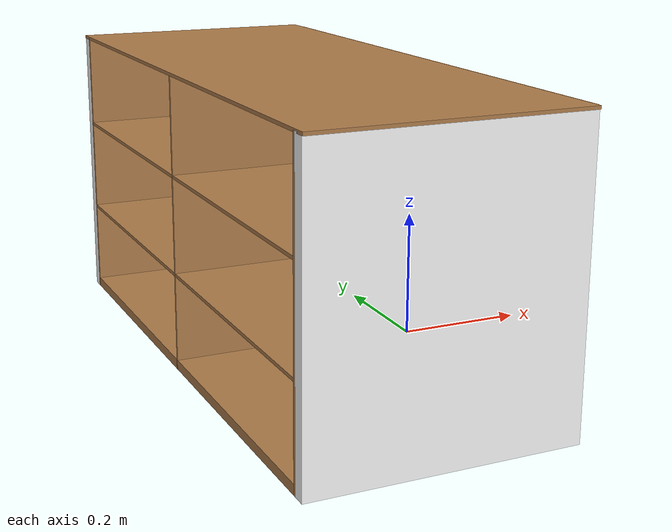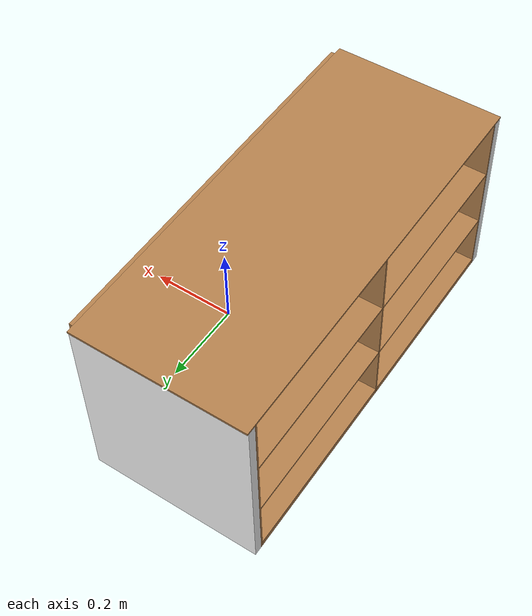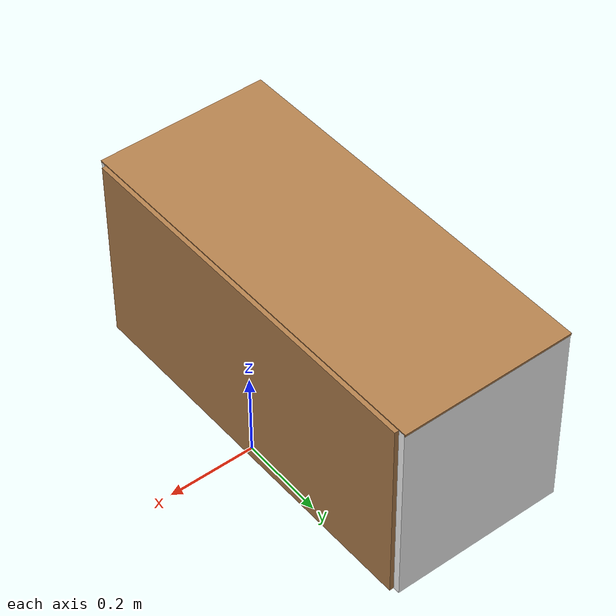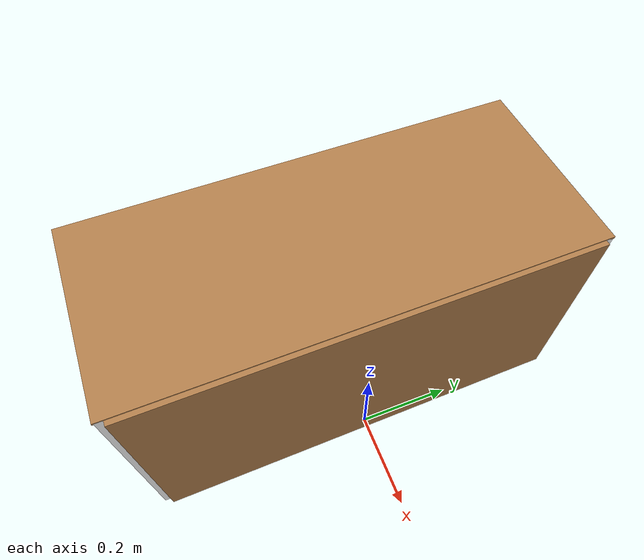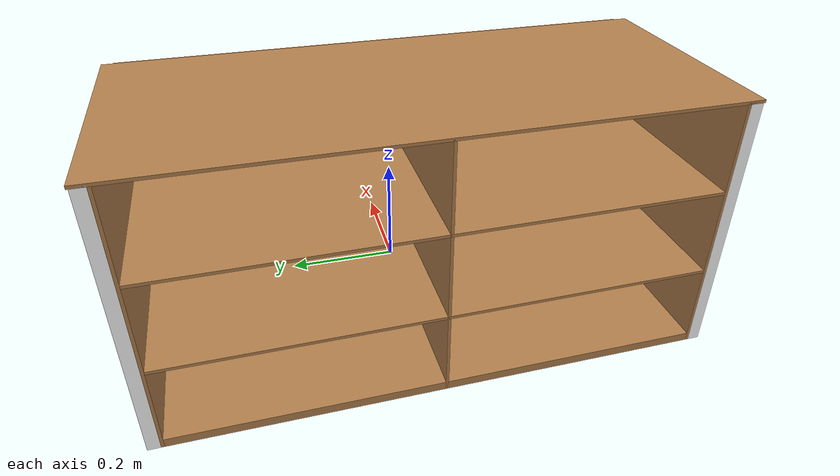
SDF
<?xml version='1.0'?>
<sdf version='1.6'>
  <model name='bookshelf_i_0'>
    <link name='link'>
      <pose frame=''>0 0 0 0 0 -1.56022</pose>
      <inertial>
        <mass>1</mass>
      </inertial>
      <self_collide>0</self_collide>
      <kinematic>0</kinematic>
      <visual name='right_side'>
        <pose frame=''>-0.455 -0.195 0.225 0 -0 0</pose>
        <geometry>
          <box>
            <size>0.02 0.4 0.45</size>
          </box>
        </geometry>
        <material>
          <script>
            <uri>model://bookshelf_i_0/materials11/scripts</uri>
            <uri>model://bookshelf_i_0/materials11/textures</uri>
            <name>BookShelf/11</name>
          </script>
          <shader type='pixel'/>
          <ambient>1 1 1 1</ambient>
          <diffuse>1 1 1 1</diffuse>
          <specular>0 0 0 1</specular>
          <emissive>0 0 0 1</emissive>
        </material>
        <transparency>0</transparency>
        <cast_shadows>1</cast_shadows>
      </visual>
      <visual name='left_side_inner'>
        <pose frame=''>0.4425 -0.195 0.225 0 -0 0</pose>
        <geometry>
          <box>
            <size>0.005 0.4 0.45</size>
          </box>
        </geometry>
        <material>
          <script>
            <uri>file://media/materials/scripts/gazebo.material</uri>
            <name>Gazebo/Wood</name>
          </script>
          <shader type='pixel'/>
          <ambient>1 1 1 1</ambient>
          <diffuse>1 1 1 1</diffuse>
          <specular>0.2 0.2 0.2 1</specular>
          <emissive>0 0 0 1</emissive>
        </material>
        <transparency>0</transparency>
        <cast_shadows>1</cast_shadows>
      </visual>
      <visual name='bottom'>
        <pose frame=''>0 -0.195 0.0075 0 -0 0</pose>
        <geometry>
          <box>
            <size>0.88 0.4 0.015</size>
          </box>
        </geometry>
        <material>
          <script>
            <uri>file://media/materials/scripts/gazebo.material</uri>
            <name>Gazebo/Wood</name>
          </script>
          <shader type='pixel'/>
          <ambient>1 1 1 1</ambient>
          <diffuse>1 1 1 1</diffuse>
          <specular>0.2 0.2 0.2 1</specular>
          <emissive>0 0 0 1</emissive>
        </material>
        <transparency>0</transparency>
        <cast_shadows>1</cast_shadows>
      </visual>
      <visual name='low_shelf'>
        <pose frame=''>0 -0.195 0.15 0 -0 0</pose>
        <geometry>
          <box>
            <size>0.88 0.4 0.005</size>
          </box>
        </geometry>
        <material>
          <script>
            <uri>file://media/materials/scripts/gazebo.material</uri>
            <name>Gazebo/Wood</name>
          </script>
          <shader type='pixel'/>
          <ambient>1 1 1 1</ambient>
          <diffuse>1 1 1 1</diffuse>
          <specular>0.2 0.2 0.2 1</specular>
          <emissive>0 0 0 1</emissive>
        </material>
        <transparency>0</transparency>
        <cast_shadows>1</cast_shadows>
      </visual>
      <visual name='back'>
        <pose frame=''>0 0.01 0.225 0 -0 0</pose>
        <geometry>
          <box>
            <size>0.9 0.01 0.45</size>
          </box>
        </geometry>
        <material>
          <script>
            <uri>file://media/materials/scripts/gazebo.material</uri>
            <name>Gazebo/Wood</name>
          </script>
          <shader type='pixel'/>
          <ambient>1 1 1 1</ambient>
          <diffuse>1 1 1 1</diffuse>
          <specular>0.2 0.2 0.2 1</specular>
          <emissive>0 0 0 1</emissive>
        </material>
        <transparency>0</transparency>
        <cast_shadows>1</cast_shadows>
      </visual>
      <visual name='top'>
        <pose frame=''>0 -0.195 0.45 0 -0 0</pose>
        <geometry>
          <box>
            <size>0.935 0.4 0.005</size>
          </box>
        </geometry>
        <material>
          <script>
            <uri>file://media/materials/scripts/gazebo.material</uri>
            <name>Gazebo/Wood</name>
          </script>
          <shader type='pixel'/>
          <ambient>1 1 1 1</ambient>
          <diffuse>1 1 1 1</diffuse>
          <specular>0.2 0.2 0.2 1</specular>
          <emissive>0 0 0 1</emissive>
        </material>
        <transparency>0</transparency>
        <cast_shadows>1</cast_shadows>
      </visual>
      <visual name='right_side_inner'>
        <pose frame=''>-0.4425 -0.195 0.225 0 -0 0</pose>
        <geometry>
          <box>
            <size>0.005 0.4 0.45</size>
          </box>
        </geometry>
        <material>
          <script>
            <uri>file://media/materials/scripts/gazebo.material</uri>
            <name>Gazebo/Wood</name>
          </script>
          <shader type='pixel'/>
          <ambient>1 1 1 1</ambient>
          <diffuse>1 1 1 1</diffuse>
          <specular>0.2 0.2 0.2 1</specular>
          <emissive>0 0 0 1</emissive>
        </material>
        <transparency>0</transparency>
        <cast_shadows>1</cast_shadows>
      </visual>
      <visual name='high_shelf'>
        <pose frame=''>0 -0.195 0.3 0 -0 0</pose>
        <geometry>
          <box>
            <size>0.88 0.4 0.005</size>
          </box>
        </geometry>
        <material>
          <script>
            <uri>file://media/materials/scripts/gazebo.material</uri>
            <name>Gazebo/Wood</name>
          </script>
          <shader type='pixel'/>
          <ambient>1 1 1 1</ambient>
          <diffuse>1 1 1 1</diffuse>
          <specular>0.2 0.2 0.2 1</specular>
          <emissive>0 0 0 1</emissive>
        </material>
        <transparency>0</transparency>
        <cast_shadows>1</cast_shadows>
      </visual>
      <visual name='left_side'>
        <pose frame=''>0.455 -0.195 0.225 0 -0 0</pose>
        <geometry>
          <box>
            <size>0.02 0.4 0.45</size>
          </box>
        </geometry>
        <material>
          <script>
            <uri>model://bookshelf_i_0/materials11/scripts</uri>
            <uri>model://bookshelf_i_0/materials11/textures</uri>
            <name>BookShelf/11</name>
          </script>
          <shader type='pixel'/>
          <ambient>1 1 1 1</ambient>
          <diffuse>1 1 1 1</diffuse>
          <specular>0 0 0 1</specular>
          <emissive>0 0 0 1</emissive>
        </material>
        <transparency>0</transparency>
        <cast_shadows>1</cast_shadows>
      </visual>
      <visual name='right_side_center'>
        <pose frame=''>0 -0.195 0.225 0 -0 0</pose>
        <geometry>
          <box>
            <size>0.005 0.4 0.45</size>
          </box>
        </geometry>
        <material>
          <script>
            <uri>file://media/materials/scripts/gazebo.material</uri>
            <name>Gazebo/Wood</name>
          </script>
          <shader type='pixel'/>
          <ambient>1 1 1 1</ambient>
          <diffuse>1 1 1 1</diffuse>
          <specular>0.2 0.2 0.2 1</specular>
          <emissive>0 0 0 1</emissive>
        </material>
        <transparency>0</transparency>
        <cast_shadows>1</cast_shadows>
      </visual>
      <collision name='top'>
        <laser_retro>0</laser_retro>
        <max_contacts>10</max_contacts>
        <pose frame=''>0 -0.195 0.45 0 -0 0</pose>
        <geometry>
          <box>
            <size>0.935 0.4 0.005</size>
          </box>
        </geometry>
        <surface>
          <friction>
            <ode>
              <mu>1</mu>
              <mu2>1</mu2>
              <fdir1>0 0 0</fdir1>
              <slip1>0</slip1>
              <slip2>0</slip2>
            </ode>
            <torsional>
              <coefficient>1</coefficient>
              <patch_radius>0</patch_radius>
              <surface_radius>0</surface_radius>
              <use_patch_radius>1</use_patch_radius>
              <ode>
                <slip>0</slip>
              </ode>
            </torsional>
          </friction>
          <bounce>
            <restitution_coefficient>0</restitution_coefficient>
            <threshold>1e+06</threshold>
          </bounce>
          <contact>
            <collide_without_contact>0</collide_without_contact>
            <collide_without_contact_bitmask>1</collide_without_contact_bitmask>
            <collide_bitmask>1</collide_bitmask>
            <ode>
              <soft_cfm>0</soft_cfm>
              <soft_erp>0.2</soft_erp>
              <kp>1e+13</kp>
              <kd>1</kd>
              <max_vel>0.01</max_vel>
              <min_depth>0</min_depth>
            </ode>
            <bullet>
              <split_impulse>1</split_impulse>
              <split_impulse_penetration_threshold>-0.01</split_impulse_penetration_threshold>
              <soft_cfm>0</soft_cfm>
              <soft_erp>0.2</soft_erp>
              <kp>1e+13</kp>
              <kd>1</kd>
            </bullet>
          </contact>
        </surface>
      </collision>
      <collision name='right_side_center'>
        <laser_retro>0</laser_retro>
        <max_contacts>10</max_contacts>
        <pose frame=''>0 -0.195 0.225 0 -0 0</pose>
        <geometry>
          <box>
            <size>0.005 0.4 0.45</size>
          </box>
        </geometry>
        <surface>
          <friction>
            <ode>
              <mu>1</mu>
              <mu2>1</mu2>
              <fdir1>0 0 0</fdir1>
              <slip1>0</slip1>
              <slip2>0</slip2>
            </ode>
            <torsional>
              <coefficient>1</coefficient>
              <patch_radius>0</patch_radius>
              <surface_radius>0</surface_radius>
              <use_patch_radius>1</use_patch_radius>
              <ode>
                <slip>0</slip>
              </ode>
            </torsional>
          </friction>
          <bounce>
            <restitution_coefficient>0</restitution_coefficient>
            <threshold>1e+06</threshold>
          </bounce>
          <contact>
            <collide_without_contact>0</collide_without_contact>
            <collide_without_contact_bitmask>1</collide_without_contact_bitmask>
            <collide_bitmask>1</collide_bitmask>
            <ode>
              <soft_cfm>0</soft_cfm>
              <soft_erp>0.2</soft_erp>
              <kp>1e+13</kp>
              <kd>1</kd>
              <max_vel>0.01</max_vel>
              <min_depth>0</min_depth>
            </ode>
            <bullet>
              <split_impulse>1</split_impulse>
              <split_impulse_penetration_threshold>-0.01</split_impulse_penetration_threshold>
              <soft_cfm>0</soft_cfm>
              <soft_erp>0.2</soft_erp>
              <kp>1e+13</kp>
              <kd>1</kd>
            </bullet>
          </contact>
        </surface>
      </collision>
      <collision name='back'>
        <laser_retro>0</laser_retro>
        <max_contacts>10</max_contacts>
        <pose frame=''>0 0.01 0.225 0 -0 0</pose>
        <geometry>
          <box>
            <size>0.9 0.01 0.45</size>
          </box>
        </geometry>
        <surface>
          <friction>
            <ode>
              <mu>1</mu>
              <mu2>1</mu2>
              <fdir1>0 0 0</fdir1>
              <slip1>0</slip1>
              <slip2>0</slip2>
            </ode>
            <torsional>
              <coefficient>1</coefficient>
              <patch_radius>0</patch_radius>
              <surface_radius>0</surface_radius>
              <use_patch_radius>1</use_patch_radius>
              <ode>
                <slip>0</slip>
              </ode>
            </torsional>
          </friction>
          <bounce>
            <restitution_coefficient>0</restitution_coefficient>
            <threshold>1e+06</threshold>
          </bounce>
          <contact>
            <collide_without_contact>0</collide_without_contact>
            <collide_without_contact_bitmask>1</collide_without_contact_bitmask>
            <collide_bitmask>1</collide_bitmask>
            <ode>
              <soft_cfm>0</soft_cfm>
              <soft_erp>0.2</soft_erp>
              <kp>1e+13</kp>
              <kd>1</kd>
              <max_vel>0.01</max_vel>
              <min_depth>0</min_depth>
            </ode>
            <bullet>
              <split_impulse>1</split_impulse>
              <split_impulse_penetration_threshold>-0.01</split_impulse_penetration_threshold>
              <soft_cfm>0</soft_cfm>
              <soft_erp>0.2</soft_erp>
              <kp>1e+13</kp>
              <kd>1</kd>
            </bullet>
          </contact>
        </surface>
      </collision>
      <collision name='right_side_inner'>
        <laser_retro>0</laser_retro>
        <max_contacts>10</max_contacts>
        <pose frame=''>-0.4425 -0.195 0.225 0 -0 0</pose>
        <geometry>
          <box>
            <size>0.005 0.4 0.45</size>
          </box>
        </geometry>
        <surface>
          <friction>
            <ode>
              <mu>1</mu>
              <mu2>1</mu2>
              <fdir1>0 0 0</fdir1>
              <slip1>0</slip1>
              <slip2>0</slip2>
            </ode>
            <torsional>
              <coefficient>1</coefficient>
              <patch_radius>0</patch_radius>
              <surface_radius>0</surface_radius>
              <use_patch_radius>1</use_patch_radius>
              <ode>
                <slip>0</slip>
              </ode>
            </torsional>
          </friction>
          <bounce>
            <restitution_coefficient>0</restitution_coefficient>
            <threshold>1e+06</threshold>
          </bounce>
          <contact>
            <collide_without_contact>0</collide_without_contact>
            <collide_without_contact_bitmask>1</collide_without_contact_bitmask>
            <collide_bitmask>1</collide_bitmask>
            <ode>
              <soft_cfm>0</soft_cfm>
              <soft_erp>0.2</soft_erp>
              <kp>1e+13</kp>
              <kd>1</kd>
              <max_vel>0.01</max_vel>
              <min_depth>0</min_depth>
            </ode>
            <bullet>
              <split_impulse>1</split_impulse>
              <split_impulse_penetration_threshold>-0.01</split_impulse_penetration_threshold>
              <soft_cfm>0</soft_cfm>
              <soft_erp>0.2</soft_erp>
              <kp>1e+13</kp>
              <kd>1</kd>
            </bullet>
          </contact>
        </surface>
      </collision>
      <collision name='bottom'>
        <laser_retro>0</laser_retro>
        <max_contacts>10</max_contacts>
        <pose frame=''>0 -0.195 0.0075 0 -0 0</pose>
        <geometry>
          <box>
            <size>0.88 0.4 0.015</size>
          </box>
        </geometry>
        <surface>
          <friction>
            <ode>
              <mu>1</mu>
              <mu2>1</mu2>
              <fdir1>0 0 0</fdir1>
              <slip1>0</slip1>
              <slip2>0</slip2>
            </ode>
            <torsional>
              <coefficient>1</coefficient>
              <patch_radius>0</patch_radius>
              <surface_radius>0</surface_radius>
              <use_patch_radius>1</use_patch_radius>
              <ode>
                <slip>0</slip>
              </ode>
            </torsional>
          </friction>
          <bounce>
            <restitution_coefficient>0</restitution_coefficient>
            <threshold>1e+06</threshold>
          </bounce>
          <contact>
            <collide_without_contact>0</collide_without_contact>
            <collide_without_contact_bitmask>1</collide_without_contact_bitmask>
            <collide_bitmask>1</collide_bitmask>
            <ode>
              <soft_cfm>0</soft_cfm>
              <soft_erp>0.2</soft_erp>
              <kp>1e+13</kp>
              <kd>1</kd>
              <max_vel>0.01</max_vel>
              <min_depth>0</min_depth>
            </ode>
            <bullet>
              <split_impulse>1</split_impulse>
              <split_impulse_penetration_threshold>-0.01</split_impulse_penetration_threshold>
              <soft_cfm>0</soft_cfm>
              <soft_erp>0.2</soft_erp>
              <kp>1e+13</kp>
              <kd>1</kd>
            </bullet>
          </contact>
        </surface>
      </collision>
      <collision name='low_shelf'>
        <laser_retro>0</laser_retro>
        <max_contacts>10</max_contacts>
        <pose frame=''>0 -0.195 0.15 0 -0 0</pose>
        <geometry>
          <box>
            <size>0.88 0.4 0.005</size>
          </box>
        </geometry>
        <surface>
          <friction>
            <ode>
              <mu>1</mu>
              <mu2>1</mu2>
              <fdir1>0 0 0</fdir1>
              <slip1>0</slip1>
              <slip2>0</slip2>
            </ode>
            <torsional>
              <coefficient>1</coefficient>
              <patch_radius>0</patch_radius>
              <surface_radius>0</surface_radius>
              <use_patch_radius>1</use_patch_radius>
              <ode>
                <slip>0</slip>
              </ode>
            </torsional>
          </friction>
          <bounce>
            <restitution_coefficient>0</restitution_coefficient>
            <threshold>1e+06</threshold>
          </bounce>
          <contact>
            <collide_without_contact>0</collide_without_contact>
            <collide_without_contact_bitmask>1</collide_without_contact_bitmask>
            <collide_bitmask>1</collide_bitmask>
            <ode>
              <soft_cfm>0</soft_cfm>
              <soft_erp>0.2</soft_erp>
              <kp>1e+13</kp>
              <kd>1</kd>
              <max_vel>0.01</max_vel>
              <min_depth>0</min_depth>
            </ode>
            <bullet>
              <split_impulse>1</split_impulse>
              <split_impulse_penetration_threshold>-0.01</split_impulse_penetration_threshold>
              <soft_cfm>0</soft_cfm>
              <soft_erp>0.2</soft_erp>
              <kp>1e+13</kp>
              <kd>1</kd>
            </bullet>
          </contact>
        </surface>
      </collision>
      <collision name='high_shelf'>
        <laser_retro>0</laser_retro>
        <max_contacts>10</max_contacts>
        <pose frame=''>0 -0.195 0.3 0 -0 0</pose>
        <geometry>
          <box>
            <size>0.88 0.4 0.005</size>
          </box>
        </geometry>
        <surface>
          <friction>
            <ode>
              <mu>1</mu>
              <mu2>1</mu2>
              <fdir1>0 0 0</fdir1>
              <slip1>0</slip1>
              <slip2>0</slip2>
            </ode>
            <torsional>
              <coefficient>1</coefficient>
              <patch_radius>0</patch_radius>
              <surface_radius>0</surface_radius>
              <use_patch_radius>1</use_patch_radius>
              <ode>
                <slip>0</slip>
              </ode>
            </torsional>
          </friction>
          <bounce>
            <restitution_coefficient>0</restitution_coefficient>
            <threshold>1e+06</threshold>
          </bounce>
          <contact>
            <collide_without_contact>0</collide_without_contact>
            <collide_without_contact_bitmask>1</collide_without_contact_bitmask>
            <collide_bitmask>1</collide_bitmask>
            <ode>
              <soft_cfm>0</soft_cfm>
              <soft_erp>0.2</soft_erp>
              <kp>1e+13</kp>
              <kd>1</kd>
              <max_vel>0.01</max_vel>
              <min_depth>0</min_depth>
            </ode>
            <bullet>
              <split_impulse>1</split_impulse>
              <split_impulse_penetration_threshold>-0.01</split_impulse_penetration_threshold>
              <soft_cfm>0</soft_cfm>
              <soft_erp>0.2</soft_erp>
              <kp>1e+13</kp>
              <kd>1</kd>
            </bullet>
          </contact>
        </surface>
      </collision>
      <collision name='left_side_inner'>
        <laser_retro>0</laser_retro>
        <max_contacts>10</max_contacts>
        <pose frame=''>0.4425 -0.195 0.225 0 -0 0</pose>
        <geometry>
          <box>
            <size>0.005 0.4 0.45</size>
          </box>
        </geometry>
        <surface>
          <friction>
            <ode>
              <mu>1</mu>
              <mu2>1</mu2>
              <fdir1>0 0 0</fdir1>
              <slip1>0</slip1>
              <slip2>0</slip2>
            </ode>
            <torsional>
              <coefficient>1</coefficient>
              <patch_radius>0</patch_radius>
              <surface_radius>0</surface_radius>
              <use_patch_radius>1</use_patch_radius>
              <ode>
                <slip>0</slip>
              </ode>
            </torsional>
          </friction>
          <bounce>
            <restitution_coefficient>0</restitution_coefficient>
            <threshold>1e+06</threshold>
          </bounce>
          <contact>
            <collide_without_contact>0</collide_without_contact>
            <collide_without_contact_bitmask>1</collide_without_contact_bitmask>
            <collide_bitmask>1</collide_bitmask>
            <ode>
              <soft_cfm>0</soft_cfm>
              <soft_erp>0.2</soft_erp>
              <kp>1e+13</kp>
              <kd>1</kd>
              <max_vel>0.01</max_vel>
              <min_depth>0</min_depth>
            </ode>
            <bullet>
              <split_impulse>1</split_impulse>
              <split_impulse_penetration_threshold>-0.01</split_impulse_penetration_threshold>
              <soft_cfm>0</soft_cfm>
              <soft_erp>0.2</soft_erp>
              <kp>1e+13</kp>
              <kd>1</kd>
            </bullet>
          </contact>
        </surface>
      </collision>
      <collision name='right_side'>
        <laser_retro>0</laser_retro>
        <max_contacts>10</max_contacts>
        <pose frame=''>-0.455 -0.195 0.225 0 -0 0</pose>
        <geometry>
          <box>
            <size>0.02 0.4 0.45</size>
          </box>
        </geometry>
        <surface>
          <friction>
            <ode>
              <mu>1</mu>
              <mu2>1</mu2>
              <fdir1>0 0 0</fdir1>
              <slip1>0</slip1>
              <slip2>0</slip2>
            </ode>
            <torsional>
              <coefficient>1</coefficient>
              <patch_radius>0</patch_radius>
              <surface_radius>0</surface_radius>
              <use_patch_radius>1</use_patch_radius>
              <ode>
                <slip>0</slip>
              </ode>
            </torsional>
          </friction>
          <bounce>
            <restitution_coefficient>0</restitution_coefficient>
            <threshold>1e+06</threshold>
          </bounce>
          <contact>
            <collide_without_contact>0</collide_without_contact>
            <collide_without_contact_bitmask>1</collide_without_contact_bitmask>
            <collide_bitmask>1</collide_bitmask>
            <ode>
              <soft_cfm>0</soft_cfm>
              <soft_erp>0.2</soft_erp>
              <kp>1e+13</kp>
              <kd>1</kd>
              <max_vel>0.01</max_vel>
              <min_depth>0</min_depth>
            </ode>
            <bullet>
              <split_impulse>1</split_impulse>
              <split_impulse_penetration_threshold>-0.01</split_impulse_penetration_threshold>
              <soft_cfm>0</soft_cfm>
              <soft_erp>0.2</soft_erp>
              <kp>1e+13</kp>
              <kd>1</kd>
            </bullet>
          </contact>
        </surface>
      </collision>
      <collision name='left_side'>
        <laser_retro>0</laser_retro>
        <max_contacts>10</max_contacts>
        <pose frame=''>0.455 -0.195 0.225 0 -0 0</pose>
        <geometry>
          <box>
            <size>0.02 0.4 0.45</size>
          </box>
        </geometry>
        <surface>
          <friction>
            <ode>
              <mu>1</mu>
              <mu2>1</mu2>
              <fdir1>0 0 0</fdir1>
              <slip1>0</slip1>
              <slip2>0</slip2>
            </ode>
            <torsional>
              <coefficient>1</coefficient>
              <patch_radius>0</patch_radius>
              <surface_radius>0</surface_radius>
              <use_patch_radius>1</use_patch_radius>
              <ode>
                <slip>0</slip>
              </ode>
            </torsional>
          </friction>
          <bounce>
            <restitution_coefficient>0</restitution_coefficient>
            <threshold>1e+06</threshold>
          </bounce>
          <contact>
            <collide_without_contact>0</collide_without_contact>
            <collide_without_contact_bitmask>1</collide_without_contact_bitmask>
            <collide_bitmask>1</collide_bitmask>
            <ode>
              <soft_cfm>0</soft_cfm>
              <soft_erp>0.2</soft_erp>
              <kp>1e+13</kp>
              <kd>1</kd>
              <max_vel>0.01</max_vel>
              <min_depth>0</min_depth>
            </ode>
            <bullet>
              <split_impulse>1</split_impulse>
              <split_impulse_penetration_threshold>-0.01</split_impulse_penetration_threshold>
              <soft_cfm>0</soft_cfm>
              <soft_erp>0.2</soft_erp>
              <kp>1e+13</kp>
              <kd>1</kd>
            </bullet>
          </contact>
        </surface>
      </collision>
    </link>
    <static>1</static>
    <allow_auto_disable>1</allow_auto_disable>
  </model>
</sdf>
